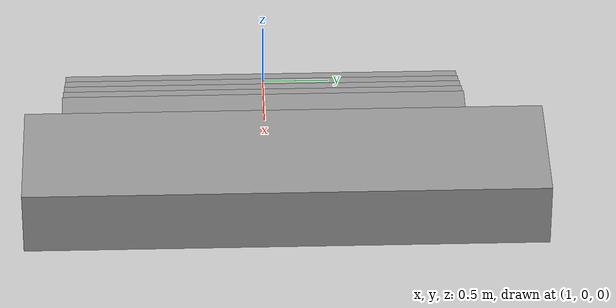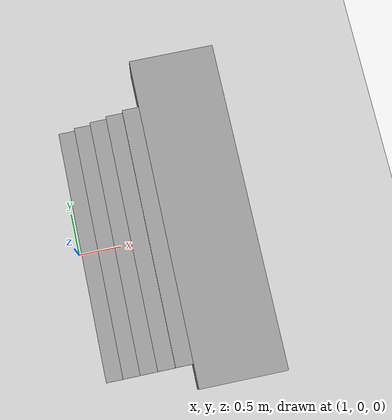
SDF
<sdf version="1.7">
 <world name="default">
  <light name="sun" type="directional">
   <pose>0 0 10 0 -0 0</pose>
   <diffuse>0.8 0.8 0.8 1</diffuse>
   <specular>0.2 0.2 0.2 1</specular>
   <attenuation>
    <range>1000</range>
    <constant>0.9</constant>
    <linear>0.01</linear>
    <quadratic>0.001</quadratic>
   </attenuation>
   <direction>-0.5 0.1 -0.9</direction>
   <spot><inner_angle>0</inner_angle><outer_angle>0</outer_angle><falloff>0</falloff></spot>
  </light>
  <model name="ground_plane">
   <static>1</static>
   <link name="link">
    <collision name="collision">
     <geometry><plane><normal>0 0 1</normal><size>100 100</size></plane></geometry>
     <surface>
      <contact><collide_bitmask>65535</collide_bitmask></contact>
      <friction><ode><mu>100</mu><mu2>50</mu2></ode></friction>
     </surface>
    </collision>
    <visual name="visual">
     <cast_shadows>0</cast_shadows>
     <geometry><plane><normal>0 0 1</normal><size>100 100</size></plane></geometry>
     <material>
      <script><uri>file://media/materials/scripts/gazebo.material</uri><name>Gazebo/Grey</name></script>
     </material>
    </visual>
   </link>
  </model>
  <gravity>0 0 -9.8</gravity>
  <magnetic_field>6e-06 2.3e-05 -4.2e-05</magnetic_field>
  <atmosphere type="adiabatic"/>
  <physics type="ode">
   <max_step_size>0.001</max_step_size>
   <real_time_factor>1</real_time_factor>
   <real_time_update_rate>1000</real_time_update_rate>
  </physics>
  <scene><ambient>0.4 0.4 0.4 1</ambient><background>0.7 0.7 0.7 1</background><shadows>1</shadows></scene>
  <spherical_coordinates>
   <surface_model>EARTH_WGS84</surface_model>
   <latitude_deg>0</latitude_deg>
   <longitude_deg>0</longitude_deg>
   <elevation>0</elevation>
   <heading_deg>0</heading_deg>
  </spherical_coordinates>
  <model name="Untitled10">
   <pose>1.37244 0.130315 0 0 -0 0</pose>
   <link name="Stairs_2">
    <visual name="Stairs_2_Visual_0">
     <pose>-0.236796 -0.147348 0.05 0 -0 1.5708</pose>
     <geometry><box><size>3 0.2 0.1</size></box></geometry>
     <material>
      <script><uri>file://media/materials/scripts/gazebo.material</uri><name>Gazebo/Grey</name></script>
      <ambient>1 1 1 1</ambient>
     </material>
     <meta><layer>0</layer></meta>
    </visual>
    <collision name="Stairs_2_Collision_0">
     <geometry><box><size>3 0.2 0.1</size></box></geometry>
     <pose>-0.236796 -0.147348 0.05 0 -0 1.5708</pose>
    </collision>
    <visual name="Stairs_2_Visual_1">
     <pose>-0.036796 -0.147348 0.15 0 -0 1.5708</pose>
     <geometry><box><size>3 0.2 0.1</size></box></geometry>
     <material>
      <script><uri>file://media/materials/scripts/gazebo.material</uri><name>Gazebo/Grey</name></script>
      <ambient>1 1 1 1</ambient>
     </material>
     <meta><layer>0</layer></meta>
    </visual>
    <collision name="Stairs_2_Collision_1">
     <geometry><box><size>3 0.2 0.1</size></box></geometry>
     <pose>-0.036796 -0.147348 0.15 0 -0 1.5708</pose>
    </collision>
    <visual name="Stairs_2_Visual_2">
     <pose>0.163204 -0.147348 0.25 0 -0 1.5708</pose>
     <geometry><box><size>3 0.2 0.1</size></box></geometry>
     <material>
      <script><uri>file://media/materials/scripts/gazebo.material</uri><name>Gazebo/Grey</name></script>
      <ambient>1 1 1 1</ambient>
     </material>
     <meta><layer>0</layer></meta>
    </visual>
    <collision name="Stairs_2_Collision_2">
     <geometry><box><size>3 0.2 0.1</size></box></geometry>
     <pose>0.163204 -0.147348 0.25 0 -0 1.5708</pose>
    </collision>
    <visual name="Stairs_2_Visual_3">
     <pose>0.363204 -0.147348 0.35 0 -0 1.5708</pose>
     <geometry><box><size>3 0.2 0.1</size></box></geometry>
     <material>
      <script><uri>file://media/materials/scripts/gazebo.material</uri><name>Gazebo/Grey</name></script>
      <ambient>1 1 1 1</ambient>
     </material>
     <meta><layer>0</layer></meta>
    </visual>
    <collision name="Stairs_2_Collision_3">
     <geometry><box><size>3 0.2 0.1</size></box></geometry>
     <pose>0.363204 -0.147348 0.35 0 -0 1.5708</pose>
    </collision>
    <visual name="Stairs_2_Visual_4">
     <pose>0.563204 -0.147348 0.45 0 -0 1.5708</pose>
     <geometry><box><size>3 0.2 0.1</size></box></geometry>
     <material>
      <script><uri>file://media/materials/scripts/gazebo.material</uri><name>Gazebo/Grey</name></script>
      <ambient>1 1 1 1</ambient>
     </material>
     <meta><layer>0</layer></meta>
    </visual>
    <collision name="Stairs_2_Collision_4">
     <geometry><box><size>3 0.2 0.1</size></box></geometry>
     <pose>0.563204 -0.147348 0.45 0 -0 1.5708</pose>
    </collision>
   </link>
   <link name="Wall_3">
    <collision name="Wall_3_Collision">
     <geometry><box><size>3.85 1 0.5</size></box></geometry>
     <pose>0 0 0.25 0 -0 0</pose>
    </collision>
    <visual name="Wall_3_Visual">
     <pose>0 0 0.25 0 -0 0</pose>
     <geometry><box><size>3.85 1 0.5</size></box></geometry>
     <material>
      <script><uri>file://media/materials/scripts/gazebo.material</uri><name>Gazebo/Grey</name></script>
      <ambient>1 1 1 1</ambient>
     </material>
     <meta><layer>0</layer></meta>
    </visual>
    <pose>1.16272 0 0 0 -0 -1.5708</pose>
   </link>
   <static>1</static>
  </model>
 </world>
</sdf>
